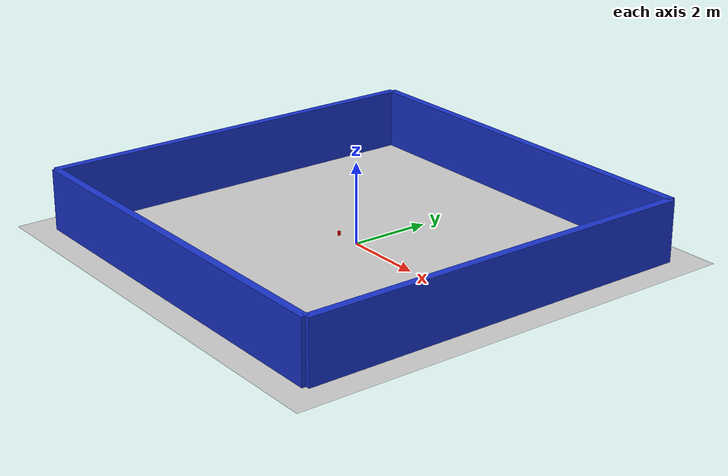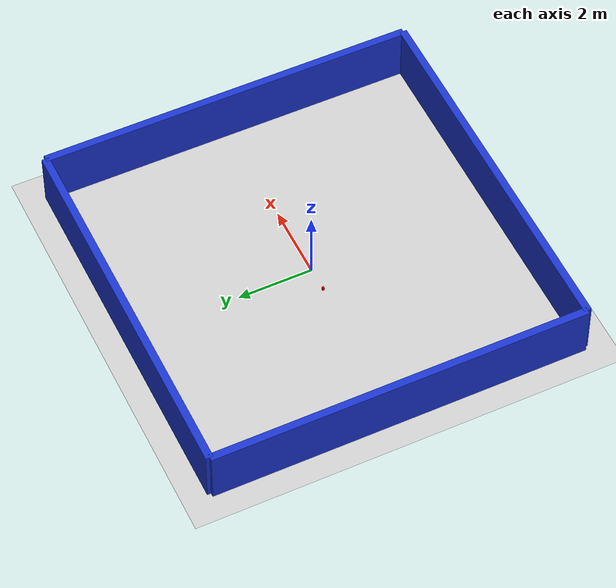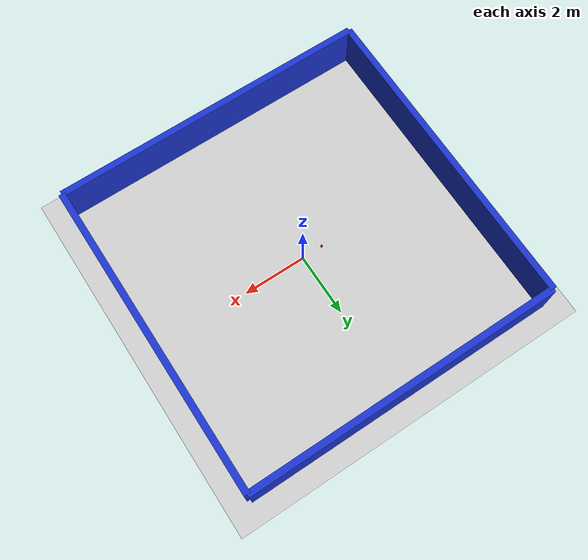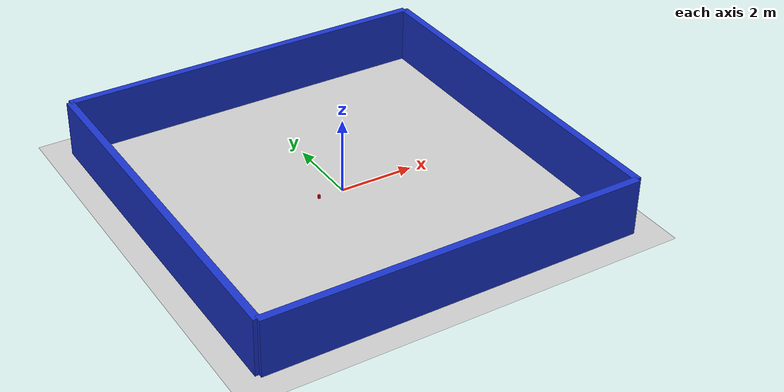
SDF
<?xml version="1.0"?>
<sdf version="1.9">
    <world name="empty_world">
        <physics name="1ms" type="ignored">
            <max_step_size>0.001</max_step_size>
            <real_time_factor>1.0</real_time_factor>
        </physics>
        <light type="directional" name="sun">
            <cast_shadows>true</cast_shadows>
            <pose>0 0 10 0 0 0</pose>
            <diffuse>0.8 0.8 0.8 1</diffuse>
            <specular>0.2 0.2 0.2 1</specular>
            <attenuation>
                <range>1000</range>
                <constant>0.9</constant>
                <linear>0.01</linear>
                <quadratic>0.001</quadratic>
            </attenuation>
            <direction>-0.5 0.1 -0.9</direction>
        </light>
        <gravity>0 0 -9.8000000000000007</gravity>
        <scene>
            <ambient>0.400000006 0.400000006 0.400000006 1</ambient>
            <background>0.699999988 0.699999988 0.699999988 1</background>
            <shadows>true</shadows>
        </scene>
        <!-- Ground plane -->
        <model name="ground_plane">
            <static>true</static>
            <link name="link">
                <collision name="collision">
                    <geometry>
                        <plane>
                            <normal>0 0 1</normal>
                            <size>100 100</size>
                        </plane>
                    </geometry>
                    <surface>
                        <friction>
                            <ode>
                                <mu>50</mu>
                            </ode>
                        </friction>
                        <bounce />
                        <contact />
                    </surface>
                </collision>
                <visual name="visual">
                    <geometry>
                        <plane>
                            <normal>0 0 1</normal>
                            <size>100 100</size>
                        </plane>
                    </geometry>
                    <material>
                        <ambient>0.8 0.8 0.8 1</ambient>
                        <diffuse>0.8 0.8 0.8 1</diffuse>
                        <specular>0.8 0.8 0.8 1</specular>
                    </material>
                </visual>
            </link>
        </model>
        <!-- ADDITIONAL WALLS -->
        <model name="wall_test">
            <static>true</static>
            <pose>0 5 0.75 0 0 0</pose>
            <link name="link">
                <collision name="collision">
                    <geometry>
                        <box>
                            <size>10 0.2 1.5</size>
                        </box>
                    </geometry>
                </collision>
                <visual name="visual">
                    <geometry>
                        <box>
                            <size>10 0.2 1.5</size>
                        </box>
                    </geometry>
                    <material>
                        <ambient>0.1 0.2 0.8 1</ambient>
                        <diffuse>0.1 0.2 0.8 1</diffuse>
                        <specular>0.2 0.2 0.2 1</specular>
                    </material>
                </visual>
            </link>
        </model>
        <model name="wall_back">
            <static>true</static>
            <pose>0 -5 0.75 0 0 0</pose>
            <link name="link">
                <collision name="collision">
                    <geometry>
                        <box>
                            <size>10 0.2 1.5</size>
                        </box>
                    </geometry>
                </collision>
                <visual name="visual">
                    <geometry>
                        <box>
                            <size>10 0.2 1.5</size>
                        </box>
                    </geometry>
                    <material>
                        <ambient>0.1 0.2 0.8 1</ambient>
                        <diffuse>0.1 0.2 0.8 1</diffuse>
                        <specular>0.2 0.2 0.2 1</specular>
                    </material>
                </visual>
            </link>
        </model>

        <model name="wall_left">
            <static>true</static>
            <pose>-5 0 0.75 0 0 0</pose>
            <link name="link">
                <collision name="collision">
                    <geometry>
                        <box>
                            <size>0.2 10 1.5</size>
                        </box>
                    </geometry>
                </collision>
                <visual name="visual">
                    <geometry>
                        <box>
                            <size>0.2 10 1.5</size>
                        </box>
                    </geometry>
                    <material>
                        <ambient>0.1 0.2 0.8 1</ambient>
                        <diffuse>0.1 0.2 0.8 1</diffuse>
                        <specular>0.2 0.2 0.2 1</specular>
                    </material>
                </visual>
            </link>
        </model>

        <model name="wall_right">
            <static>true</static>
            <pose>5 0 0.75 0 0 0</pose>
            <link name="link">
                <collision name="collision">
                    <geometry>
                        <box>
                            <size>0.2 10 1.5</size>
                        </box>
                    </geometry>
                </collision>
                <visual name="visual">
                    <geometry>
                        <box>
                            <size>0.2 10 1.5</size>
                        </box>
                    </geometry>
                    <material>
                        <ambient>0.1 0.2 0.8 1</ambient>
                        <diffuse>0.1 0.2 0.8 1</diffuse>
                        <specular>0.2 0.2 0.2 1</specular>
                    </material>
                </visual>
            </link>
        </model>
        <model name="target_box">
            <static>false</static>
            <pose>-0.67 0 0.05 0 0 0</pose>
            <link name="link">
                <visual name="visual">
                    <geometry>
                        <box>
                            <size>0.05 0.05 0.1</size>
                        </box>
                    </geometry>
                    <material>
                        <ambient>1 0 0 1</ambient>
                        <diffuse>1 0 0 1</diffuse>
                    </material>
                </visual>
                <collision name="collision">
                    <geometry>
                        <box>
                            <size>0.05 0.05 0.1</size>
                        </box>
                    </geometry>
                </collision>
                <inertial>
                    <mass>0.1</mass>
                </inertial>
            </link>
        </model>
    </world>
</sdf>
